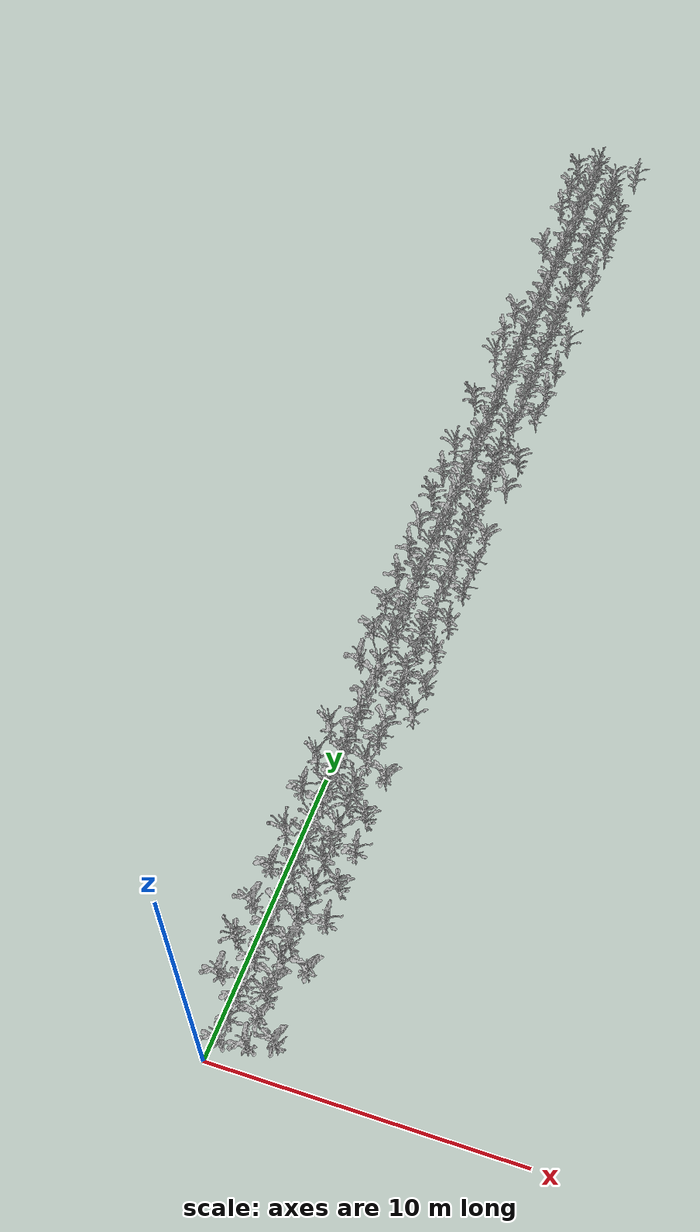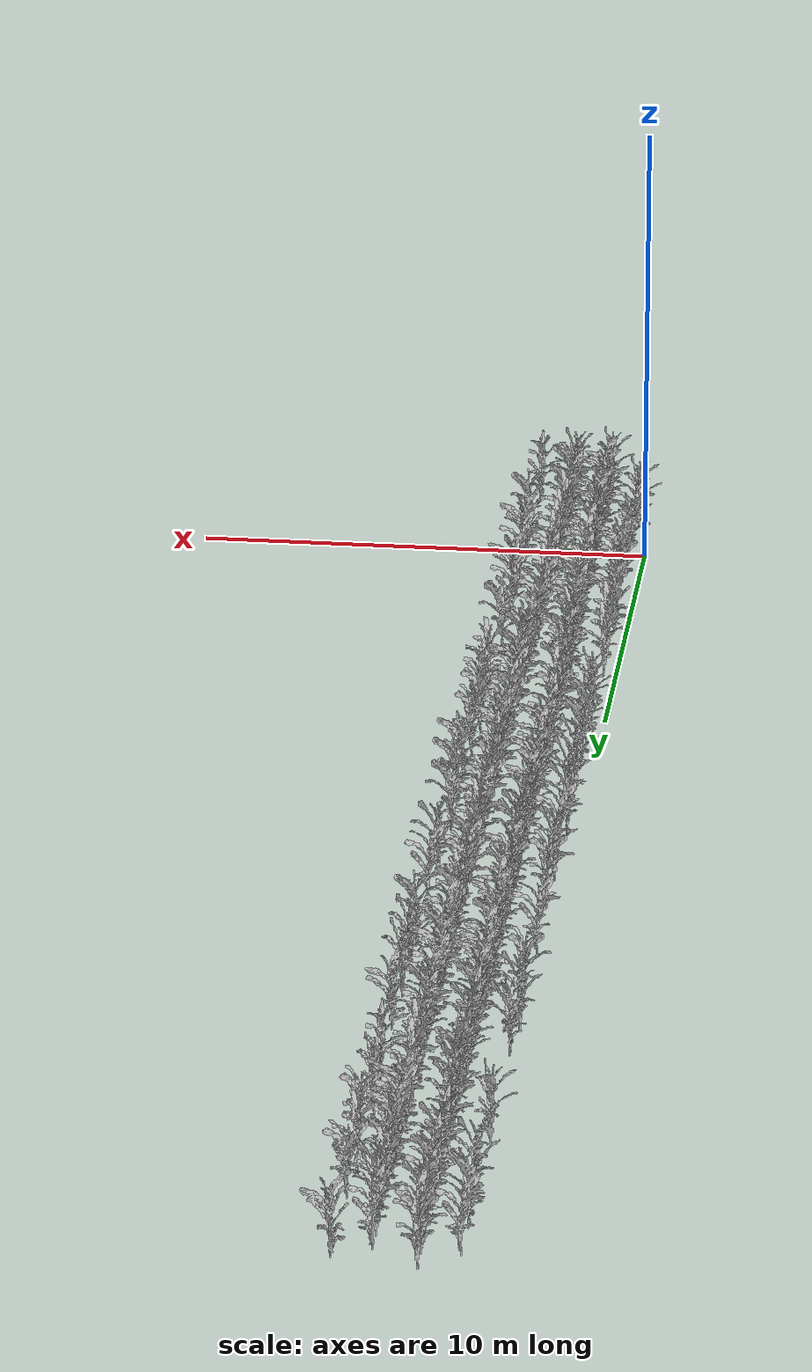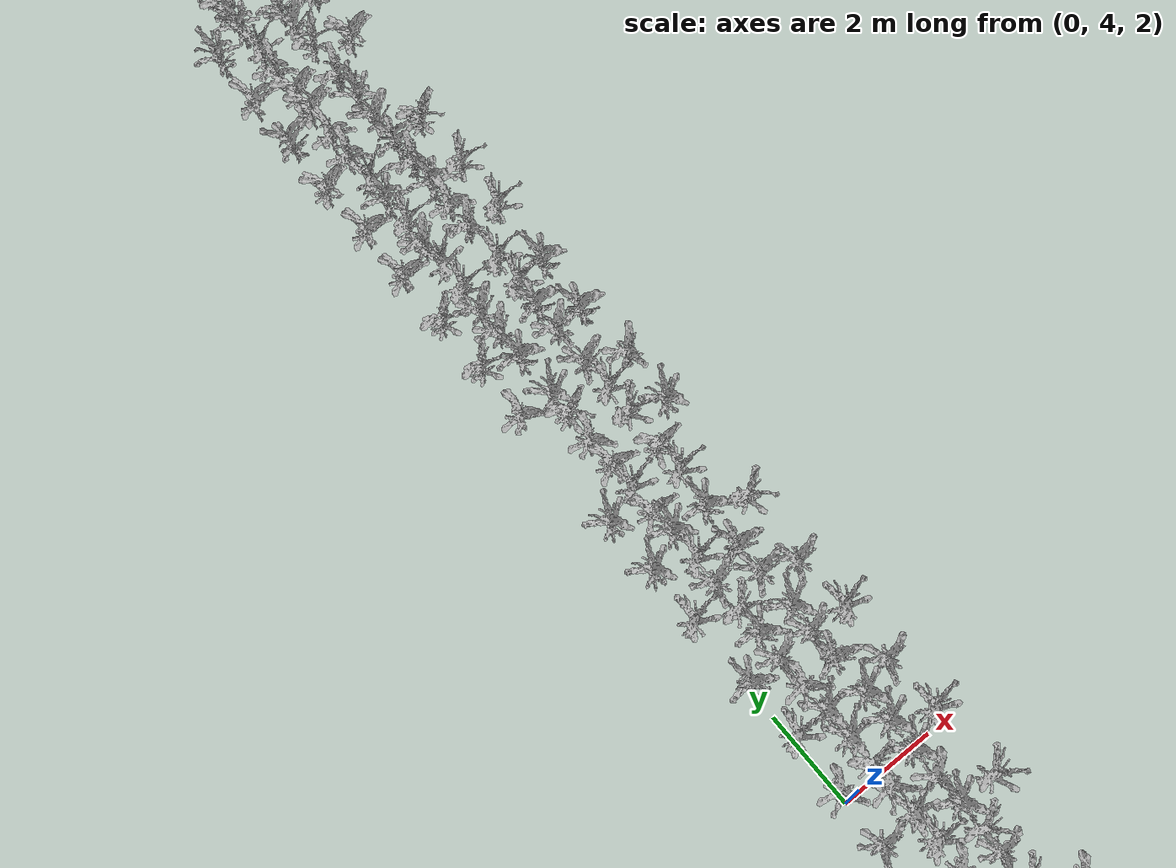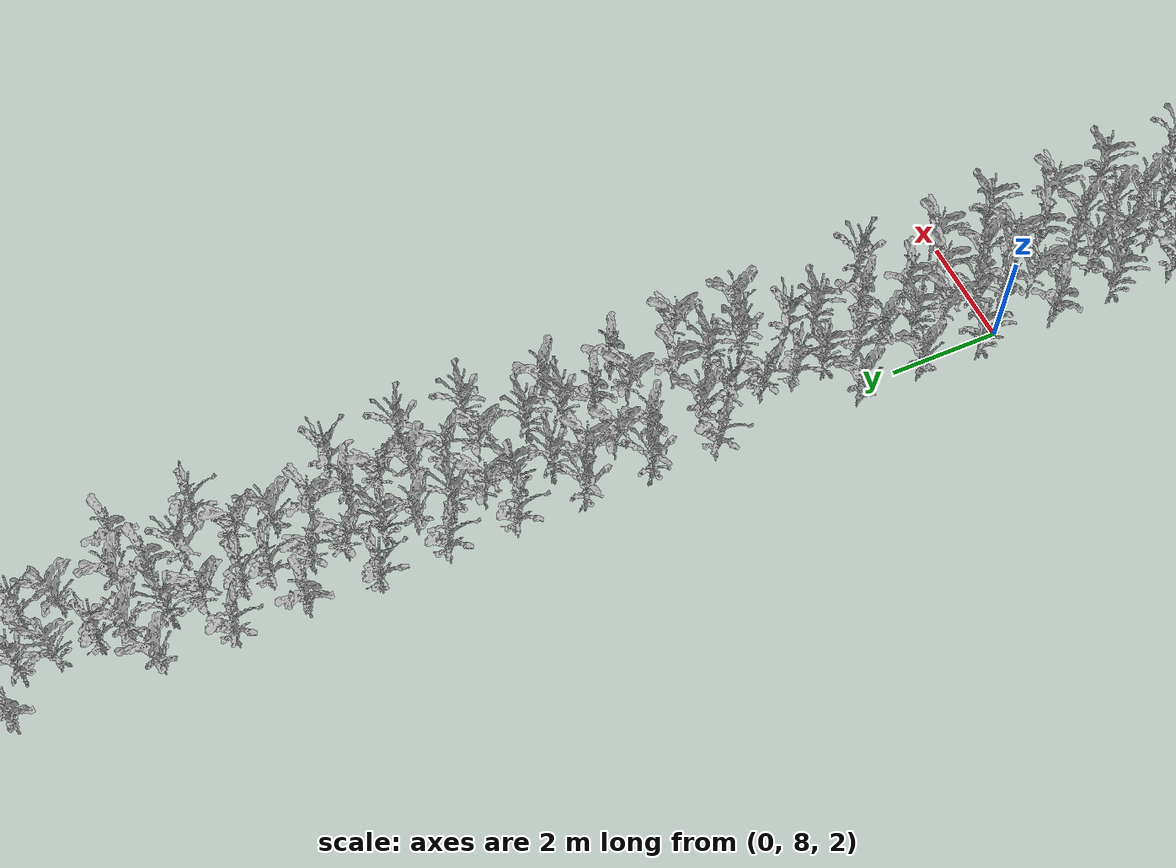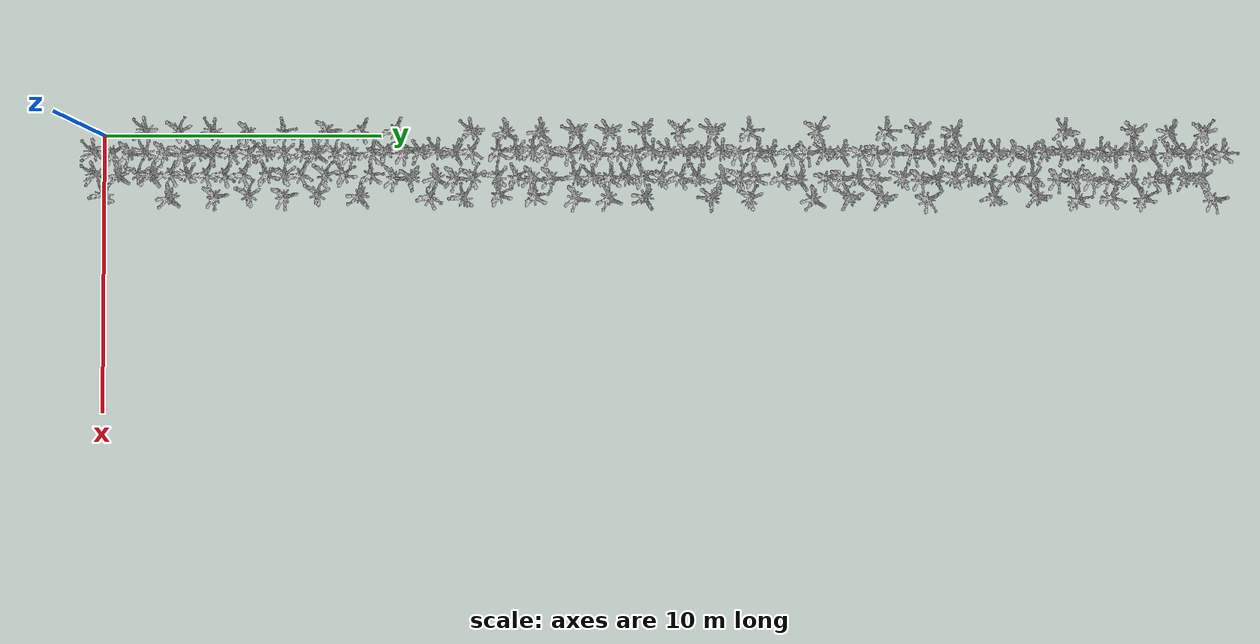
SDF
<sdf version="1.5">
  <model name="model_plot">
    <static>true</static>

    <include>
      <uri>model://sorghum_variant_2</uri>
      <name>plant_0_6</name>
      <pose>-0.0005296306504708638 1.8389059548356452 1.4 0.0 0.0 0.19198621771937624</pose>
    </include>

    <include>
      <uri>model://sorghum_variant_2</uri>
      <name>plant_0_10</name>
      <pose>0.012063896136586514 3.002976926681025 1.4 0.0 0.0 5.1312680008633285</pose>
    </include>

    <include>
      <uri>model://sorghum_variant_2</uri>
      <name>plant_0_14</name>
      <pose>0.036037506579769375 4.221074095008121 1.4 0.0 0.0 6.178465552059927</pose>
    </include>

    <include>
      <uri>model://sorghum_variant_2</uri>
      <name>plant_0_18</name>
      <pose>0.07124165816492738 5.473838173515114 1.4 0.0 0.0 2.443460952792061</pose>
    </include>

    <include>
      <uri>model://sorghum_variant_2</uri>
      <name>plant_0_22</name>
      <pose>0.05182735784360105 6.7083161567306915 1.4 0.0 0.0 4.293509959906051</pose>
    </include>

    <include>
      <uri>model://sorghum_variant_2</uri>
      <name>plant_0_27</name>
      <pose>-0.02310438273061538 8.260260551459398 1.4 0.0 0.0 2.6179938779914944</pose>
    </include>

    <include>
      <uri>model://sorghum_variant_2</uri>
      <name>plant_0_31</name>
      <pose>0.009040332306186349 9.445509588132673 1.4 0.0 0.0 3.6826447217080354</pose>
    </include>

    <include>
      <uri>model://sorghum_variant_2</uri>
      <name>plant_0_35</name>
      <pose>-0.024197432788575897 10.65513399676432 1.4 0.0 0.0 3.717551306747922</pose>
    </include>

    <include>
      <uri>model://sorghum_variant_2</uri>
      <name>plant_0_44</name>
      <pose>-0.006260497785812971 13.401559678803588 1.4 0.0 0.0 0.2617993877991494</pose>
    </include>

    <include>
      <uri>model://sorghum_variant_2</uri>
      <name>plant_0_48</name>
      <pose>-0.00639528925372813 14.62126658039975 1.4 0.0 0.0 1.9373154697137058</pose>
    </include>

    <include>
      <uri>model://sorghum_variant_2</uri>
      <name>plant_0_52</name>
      <pose>-0.014525467854237755 15.844024195298696 1.4 0.0 0.0 1.7976891295541595</pose>
    </include>

    <include>
      <uri>model://sorghum_variant_2</uri>
      <name>plant_0_56</name>
      <pose>-0.012794186420381264 17.082048767878593 1.4 0.0 0.0 0.6806784082777885</pose>
    </include>

    <include>
      <uri>model://sorghum_variant_2</uri>
      <name>plant_0_60</name>
      <pose>-0.002522554714918456 18.292369192931112 1.4 0.0 0.0 0.6457718232379019</pose>
    </include>

    <include>
      <uri>model://sorghum_variant_2</uri>
      <name>plant_0_64</name>
      <pose>-0.0734174621026619 19.511047646149397 1.4 0.0 0.0 1.0995574287564276</pose>
    </include>

    <include>
      <uri>model://sorghum_variant_2</uri>
      <name>plant_0_68</name>
      <pose>-0.0019873724879323185 20.73157728233579 1.4 0.0 0.0 4.956735075663896</pose>
    </include>

    <include>
      <uri>model://sorghum_variant_2</uri>
      <name>plant_0_72</name>
      <pose>-0.048334341853093314 21.964638559737665 1.4 0.0 0.0 0.6632251157578453</pose>
    </include>

    <include>
      <uri>model://sorghum_variant_2</uri>
      <name>plant_0_76</name>
      <pose>-0.007524242231970922 23.196807779297284 1.4 0.0 0.0 4.2062434973063345</pose>
    </include>

    <include>
      <uri>model://sorghum_variant_2</uri>
      <name>plant_0_84</name>
      <pose>-0.0418733607801683 25.60234585579952 1.4 0.0 0.0 5.1312680008633285</pose>
    </include>

    <include>
      <uri>model://sorghum_variant_2</uri>
      <name>plant_0_92</name>
      <pose>-0.034793942409637485 28.05110179935159 1.4 0.0 0.0 4.101523742186674</pose>
    </include>

    <include>
      <uri>model://sorghum_variant_2</uri>
      <name>plant_0_96</name>
      <pose>-0.07748783712971788 29.258094065101183 1.4 0.0 0.0 0.7853981633974483</pose>
    </include>

    <include>
      <uri>model://sorghum_variant_2</uri>
      <name>plant_0_100</name>
      <pose>-0.017202674396466798 30.509530844615576 1.4 0.0 0.0 1.3089969389957472</pose>
    </include>

    <include>
      <uri>model://sorghum_variant_2</uri>
      <name>plant_0_113</name>
      <pose>-0.041044248436605875 34.42555668101766 1.4 0.0 0.0 0.05235987755982989</pose>
    </include>

    <include>
      <uri>model://sorghum_variant_2</uri>
      <name>plant_0_121</name>
      <pose>-0.03271097694754176 36.877938160344236 1.4 0.0 0.0 0.767944870877505</pose>
    </include>

    <include>
      <uri>model://sorghum_variant_2</uri>
      <name>plant_0_125</name>
      <pose>-0.033972244221492226 38.15242442695656 1.4 0.0 0.0 1.4835298641951802</pose>
    </include>

    <include>
      <uri>model://sorghum_variant_2</uri>
      <name>plant_0_129</name>
      <pose>-0.0053895282541960195 39.3192 1.4 0.0 0.0 5.061454830783556</pose>
    </include>

    <include>
      <uri>model://sorghum_variant_2</uri>
      <name>plant_0_197</name>
      <pose>0.78 0.00859493432765372 1.4 0.0 0.0 0.15707963267948966</pose>
    </include>

    <include>
      <uri>model://sorghum_variant_2</uri>
      <name>plant_0_199</name>
      <pose>0.78 0.604318459544044 1.4 0.0 0.0 3.01941960595019</pose>
    </include>

    <include>
      <uri>model://sorghum_variant_2</uri>
      <name>plant_0_201</name>
      <pose>0.78 1.2485720710655503 1.4 0.0 0.0 2.4609142453120048</pose>
    </include>

    <include>
      <uri>model://sorghum_variant_2</uri>
      <name>plant_0_203</name>
      <pose>0.78 1.8132744933393914 1.4 0.0 0.0 6.021385919380437</pose>
    </include>

    <include>
      <uri>model://sorghum_variant_2</uri>
      <name>plant_0_205</name>
      <pose>0.78 2.495308846564527 1.4 0.0 0.0 2.4609142453120048</pose>
    </include>

    <include>
      <uri>model://sorghum_variant_2</uri>
      <name>plant_0_207</name>
      <pose>0.78 3.110507809060019 1.4 0.0 0.0 2.9321531433504737</pose>
    </include>

    <include>
      <uri>model://sorghum_variant_2</uri>
      <name>plant_0_209</name>
      <pose>0.78 3.7275937663911125 1.4 0.0 0.0 0.22689280275926285</pose>
    </include>

    <include>
      <uri>model://sorghum_variant_2</uri>
      <name>plant_0_211</name>
      <pose>0.78 4.2437941434434805 1.4 0.0 0.0 1.1693705988362009</pose>
    </include>

    <include>
      <uri>model://sorghum_variant_2</uri>
      <name>plant_0_213</name>
      <pose>0.78 4.836644146607865 1.4 0.0 0.0 3.2288591161895095</pose>
    </include>

    <include>
      <uri>model://sorghum_variant_2</uri>
      <name>plant_0_215</name>
      <pose>0.78 5.469874423059792 1.4 0.0 0.0 3.3335788713091694</pose>
    </include>

    <include>
      <uri>model://sorghum_variant_2</uri>
      <name>plant_0_217</name>
      <pose>0.78 6.090824765904237 1.4 0.0 0.0 0.20943951023931956</pose>
    </include>

    <include>
      <uri>model://sorghum_variant_2</uri>
      <name>plant_0_219</name>
      <pose>0.78 6.728391545595026 1.4 0.0 0.0 5.480333851262195</pose>
    </include>

    <include>
      <uri>model://sorghum_variant_2</uri>
      <name>plant_0_221</name>
      <pose>0.78 7.32920607511361 1.4 0.0 0.0 4.084070449666731</pose>
    </include>

    <include>
      <uri>model://sorghum_variant_2</uri>
      <name>plant_0_223</name>
      <pose>0.78 7.900958697858983 1.4 0.0 0.0 1.9198621771937625</pose>
    </include>

    <include>
      <uri>model://sorghum_variant_2</uri>
      <name>plant_0_225</name>
      <pose>0.78 8.54025663577937 1.4 0.0 0.0 5.358160803622591</pose>
    </include>

    <include>
      <uri>model://sorghum_variant_2</uri>
      <name>plant_0_227</name>
      <pose>0.78 9.141726983418838 1.4 0.0 0.0 2.548180707911721</pose>
    </include>

    <include>
      <uri>model://sorghum_variant_2</uri>
      <name>plant_0_229</name>
      <pose>0.78 9.81197552772033 1.4 0.0 0.0 3.8920842319473548</pose>
    </include>

    <include>
      <uri>model://sorghum_variant_2</uri>
      <name>plant_0_231</name>
      <pose>0.715 10.352805445266995 1.4 0.0 0.0 0.8726646259971648</pose>
    </include>

    <include>
      <uri>model://sorghum_variant_2</uri>
      <name>plant_0_233</name>
      <pose>0.715 10.964798343013909 1.4 0.0 0.0 2.705260340591211</pose>
    </include>

    <include>
      <uri>model://sorghum_variant_2</uri>
      <name>plant_0_235</name>
      <pose>0.715 11.559390276855224 1.4 0.0 0.0 0.6457718232379019</pose>
    </include>

    <include>
      <uri>model://sorghum_variant_2</uri>
      <name>plant_0_237</name>
      <pose>0.715 12.179410399091381 1.4 0.0 0.0 0.0</pose>
    </include>

    <include>
      <uri>model://sorghum_variant_2</uri>
      <name>plant_0_239</name>
      <pose>0.715 12.848557472244947 1.4 0.0 0.0 1.4486232791552935</pose>
    </include>

    <include>
      <uri>model://sorghum_variant_2</uri>
      <name>plant_0_241</name>
      <pose>0.715 13.335958901374 1.4 0.0 0.0 3.5779249665883754</pose>
    </include>

    <include>
      <uri>model://sorghum_variant_2</uri>
      <name>plant_0_244</name>
      <pose>0.715 14.312959432096134 1.4 0.0 0.0 4.223696789826278</pose>
    </include>

    <include>
      <uri>model://sorghum_variant_2</uri>
      <name>plant_0_246</name>
      <pose>0.715 14.969378642265788 1.4 0.0 0.0 5.707226654021458</pose>
    </include>

    <include>
      <uri>model://sorghum_variant_2</uri>
      <name>plant_0_248</name>
      <pose>0.715 15.531889966406707 1.4 0.0 0.0 5.497787143782138</pose>
    </include>

    <include>
      <uri>model://sorghum_variant_2</uri>
      <name>plant_0_250</name>
      <pose>0.715 16.12576222307757 1.4 0.0 0.0 2.3736477827122884</pose>
    </include>

    <include>
      <uri>model://sorghum_variant_2</uri>
      <name>plant_0_252</name>
      <pose>0.715 16.80070637781182 1.4 0.0 0.0 3.12413936106985</pose>
    </include>

    <include>
      <uri>model://sorghum_variant_2</uri>
      <name>plant_0_254</name>
      <pose>0.715 17.356890484137416 1.4 0.0 0.0 5.82939970166106</pose>
    </include>

    <include>
      <uri>model://sorghum_variant_2</uri>
      <name>plant_0_256</name>
      <pose>0.715 17.911239119095676 1.4 0.0 0.0 2.3387411976724017</pose>
    </include>

    <include>
      <uri>model://sorghum_variant_2</uri>
      <name>plant_0_258</name>
      <pose>0.715 18.56866911002355 1.4 0.0 0.0 4.118977034706618</pose>
    </include>

    <include>
      <uri>model://sorghum_variant_2</uri>
      <name>plant_0_260</name>
      <pose>0.715 19.141904991811764 1.4 0.0 0.0 2.9845130209103035</pose>
    </include>

    <include>
      <uri>model://sorghum_variant_2</uri>
      <name>plant_0_262</name>
      <pose>0.715 19.811266004382336 1.4 0.0 0.0 0.03490658503988659</pose>
    </include>

    <include>
      <uri>model://sorghum_variant_2</uri>
      <name>plant_0_264</name>
      <pose>0.715 20.405520809036915 1.4 0.0 0.0 0.29670597283903605</pose>
    </include>

    <include>
      <uri>model://sorghum_variant_2</uri>
      <name>plant_0_266</name>
      <pose>0.715 21.116299040407956 1.4 0.0 0.0 1.0122909661567112</pose>
    </include>

    <include>
      <uri>model://sorghum_variant_2</uri>
      <name>plant_0_268</name>
      <pose>0.715 21.57484143683173 1.4 0.0 0.0 1.1519173063162575</pose>
    </include>

    <include>
      <uri>model://sorghum_variant_2</uri>
      <name>plant_0_270</name>
      <pose>0.715 22.25597324315723 1.4 0.0 0.0 6.2482787221397</pose>
    </include>

    <include>
      <uri>model://sorghum_variant_2</uri>
      <name>plant_0_272</name>
      <pose>0.715 22.81104156581477 1.4 0.0 0.0 2.8448866807507573</pose>
    </include>

    <include>
      <uri>model://sorghum_variant_2</uri>
      <name>plant_0_274</name>
      <pose>0.715 23.49507432733307 1.4 0.0 0.0 4.084070449666731</pose>
    </include>

    <include>
      <uri>model://sorghum_variant_2</uri>
      <name>plant_0_276</name>
      <pose>0.715 23.982717028432347 1.4 0.0 0.0 1.3962634015954636</pose>
    </include>

    <include>
      <uri>model://sorghum_variant_2</uri>
      <name>plant_0_278</name>
      <pose>0.715 24.689960260017916 1.4 0.0 0.0 3.4033920413889427</pose>
    </include>

    <include>
      <uri>model://sorghum_variant_2</uri>
      <name>plant_0_280</name>
      <pose>0.715 25.265015847987254 1.4 0.0 0.0 2.722713633111154</pose>
    </include>

    <include>
      <uri>model://sorghum_variant_2</uri>
      <name>plant_0_282</name>
      <pose>0.715 25.95564034303193 1.4 0.0 0.0 0.4014257279586958</pose>
    </include>

    <include>
      <uri>model://sorghum_variant_2</uri>
      <name>plant_0_284</name>
      <pose>0.715 26.510050704998978 1.4 0.0 0.0 1.4835298641951802</pose>
    </include>

    <include>
      <uri>model://sorghum_variant_2</uri>
      <name>plant_0_286</name>
      <pose>0.715 27.17104577483048 1.4 0.0 0.0 3.0892327760299634</pose>
    </include>

    <include>
      <uri>model://sorghum_variant_2</uri>
      <name>plant_0_288</name>
      <pose>0.715 27.707378185004483 1.4 0.0 0.0 2.8623399732707004</pose>
    </include>

    <include>
      <uri>model://sorghum_variant_2</uri>
      <name>plant_0_290</name>
      <pose>0.715 28.282135003039308 1.4 0.0 0.0 2.5656340004316642</pose>
    </include>

    <include>
      <uri>model://sorghum_variant_2</uri>
      <name>plant_0_292</name>
      <pose>0.715 29.01417815028271 1.4 0.0 0.0 2.827433388230814</pose>
    </include>

    <include>
      <uri>model://sorghum_variant_2</uri>
      <name>plant_0_294</name>
      <pose>0.715 29.570596049572952 1.4 0.0 0.0 1.5184364492350666</pose>
    </include>

    <include>
      <uri>model://sorghum_variant_2</uri>
      <name>plant_0_296</name>
      <pose>0.715 30.177373925418866 1.4 0.0 0.0 5.707226654021458</pose>
    </include>

    <include>
      <uri>model://sorghum_variant_2</uri>
      <name>plant_0_298</name>
      <pose>0.715 30.748276268427777 1.4 0.0 0.0 0.9948376736367679</pose>
    </include>

    <include>
      <uri>model://sorghum_variant_2</uri>
      <name>plant_0_300</name>
      <pose>0.715 31.419399358693582 1.4 0.0 0.0 6.19591884457987</pose>
    </include>

    <include>
      <uri>model://sorghum_variant_2</uri>
      <name>plant_0_302</name>
      <pose>0.715 32.06789718037348 1.4 0.0 0.0 0.10471975511965978</pose>
    </include>

    <include>
      <uri>model://sorghum_variant_2</uri>
      <name>plant_0_304</name>
      <pose>0.715 32.636515553250796 1.4 0.0 0.0 2.059488517353309</pose>
    </include>

    <include>
      <uri>model://sorghum_variant_2</uri>
      <name>plant_0_306</name>
      <pose>0.715 33.20595443605181 1.4 0.0 0.0 1.1868238913561442</pose>
    </include>

    <include>
      <uri>model://sorghum_variant_2</uri>
      <name>plant_0_308</name>
      <pose>0.715 33.75218708362628 1.4 0.0 0.0 0.4188790204786391</pose>
    </include>

    <include>
      <uri>model://sorghum_variant_2</uri>
      <name>plant_0_310</name>
      <pose>0.715 34.421687217208024 1.4 0.0 0.0 0.6457718232379019</pose>
    </include>

    <include>
      <uri>model://sorghum_variant_2</uri>
      <name>plant_0_312</name>
      <pose>0.715 34.99556642452193 1.4 0.0 0.0 6.19591884457987</pose>
    </include>

    <include>
      <uri>model://sorghum_variant_2</uri>
      <name>plant_0_314</name>
      <pose>0.715 35.66675663785984 1.4 0.0 0.0 5.707226654021458</pose>
    </include>

    <include>
      <uri>model://sorghum_variant_2</uri>
      <name>plant_0_316</name>
      <pose>0.715 36.24996460405333 1.4 0.0 0.0 0.9773843811168246</pose>
    </include>

    <include>
      <uri>model://sorghum_variant_2</uri>
      <name>plant_0_318</name>
      <pose>0.715 36.884789338309574 1.4 0.0 0.0 5.82939970166106</pose>
    </include>

    <include>
      <uri>model://sorghum_variant_2</uri>
      <name>plant_0_320</name>
      <pose>0.715 37.472783520911314 1.4 0.0 0.0 1.5533430342749532</pose>
    </include>

    <include>
      <uri>model://sorghum_variant_2</uri>
      <name>plant_0_322</name>
      <pose>0.715 38.10041997228612 1.4 0.0 0.0 4.71238898038469</pose>
    </include>

    <include>
      <uri>model://sorghum_variant_2</uri>
      <name>plant_0_324</name>
      <pose>0.715 38.76175421944016 1.4 0.0 0.0 1.1693705988362009</pose>
    </include>

    <include>
      <uri>model://sorghum_variant_2</uri>
      <name>plant_0_326</name>
      <pose>0.715 39.321632227679885 1.4 0.0 0.0 3.246312408709453</pose>
    </include>

    <include>
      <uri>model://sorghum_variant_2</uri>
      <name>plant_0_328</name>
      <pose>0.715 39.960846879504054 1.4 0.0 0.0 4.084070449666731</pose>
    </include>

    <include>
      <uri>model://sorghum_variant_2</uri>
      <name>plant_2_0</name>
      <pose>1.56 0.0722431121896649 1.4 0.0 0.0 0.4188790204786391</pose>
    </include>

    <include>
      <uri>model://sorghum_variant_2</uri>
      <name>plant_2_3</name>
      <pose>1.56 0.9149569423502892 1.4 0.0 0.0 1.9024088846738192</pose>
    </include>

    <include>
      <uri>model://sorghum_variant_2</uri>
      <name>plant_2_5</name>
      <pose>1.56 1.59093775228701 1.4 0.0 0.0 5.288347633542818</pose>
    </include>

    <include>
      <uri>model://sorghum_variant_2</uri>
      <name>plant_2_7</name>
      <pose>1.56 2.120803323638079 1.4 0.0 0.0 1.5882496193148399</pose>
    </include>

    <include>
      <uri>model://sorghum_variant_2</uri>
      <name>plant_2_9</name>
      <pose>1.56 2.7055312585385534 1.4 0.0 0.0 3.735004599267865</pose>
    </include>

    <include>
      <uri>model://sorghum_variant_2</uri>
      <name>plant_2_11</name>
      <pose>1.56 3.330820923755391 1.4 0.0 0.0 5.777039824101231</pose>
    </include>

    <include>
      <uri>model://sorghum_variant_2</uri>
      <name>plant_2_13</name>
      <pose>1.56 3.9422446996040326 1.4 0.0 0.0 3.6302848441482056</pose>
    </include>

    <include>
      <uri>model://sorghum_variant_2</uri>
      <name>plant_2_15</name>
      <pose>1.56 4.5972191976072105 1.4 0.0 0.0 3.595378259108319</pose>
    </include>

    <include>
      <uri>model://sorghum_variant_2</uri>
      <name>plant_2_17</name>
      <pose>1.56 5.258313602567546 1.4 0.0 0.0 3.6651914291880923</pose>
    </include>

    <include>
      <uri>model://sorghum_variant_2</uri>
      <name>plant_2_20</name>
      <pose>1.56 6.103925923630441 1.4 0.0 0.0 4.485496177625427</pose>
    </include>

    <include>
      <uri>model://sorghum_variant_2</uri>
      <name>plant_2_22</name>
      <pose>1.56 6.7449766295643485 1.4 0.0 0.0 5.375614096142535</pose>
    </include>

    <include>
      <uri>model://sorghum_variant_2</uri>
      <name>plant_2_24</name>
      <pose>1.56 7.3217006443866435 1.4 0.0 0.0 3.7000980142279785</pose>
    </include>

    <include>
      <uri>model://sorghum_variant_2</uri>
      <name>plant_2_27</name>
      <pose>1.56 8.18209896556657 1.4 0.0 0.0 5.044001538263612</pose>
    </include>

    <include>
      <uri>model://sorghum_variant_2</uri>
      <name>plant_2_29</name>
      <pose>1.56 8.840459444922976 1.4 0.0 0.0 4.642575810304916</pose>
    </include>

    <include>
      <uri>model://sorghum_variant_2</uri>
      <name>plant_2_32</name>
      <pose>1.56 9.791610990182422 1.4 0.0 0.0 4.153883619746504</pose>
    </include>

    <include>
      <uri>model://sorghum_variant_2</uri>
      <name>plant_2_35</name>
      <pose>1.625 10.65619092240277 1.4 0.0 0.0 2.4609142453120048</pose>
    </include>

    <include>
      <uri>model://sorghum_variant_2</uri>
      <name>plant_2_37</name>
      <pose>1.625 11.267942421546527 1.4 0.0 0.0 1.117010721276371</pose>
    </include>

    <include>
      <uri>model://sorghum_variant_2</uri>
      <name>plant_2_40</name>
      <pose>1.625 12.149254848354301 1.4 0.0 0.0 1.9896753472735358</pose>
    </include>

    <include>
      <uri>model://sorghum_variant_2</uri>
      <name>plant_2_42</name>
      <pose>1.625 12.776467284209291 1.4 0.0 0.0 2.478367537831948</pose>
    </include>

    <include>
      <uri>model://sorghum_variant_2</uri>
      <name>plant_2_44</name>
      <pose>1.625 13.438865223423544 1.4 0.0 0.0 5.218534463463046</pose>
    </include>

    <include>
      <uri>model://sorghum_variant_2</uri>
      <name>plant_2_47</name>
      <pose>1.625 14.311562907365612 1.4 0.0 0.0 5.6374134839416845</pose>
    </include>

    <include>
      <uri>model://sorghum_variant_2</uri>
      <name>plant_2_49</name>
      <pose>1.625 14.95679365136133 1.4 0.0 0.0 4.537856055185257</pose>
    </include>

    <include>
      <uri>model://sorghum_variant_2</uri>
      <name>plant_2_51</name>
      <pose>1.625 15.552135381397202 1.4 0.0 0.0 2.3911010752322315</pose>
    </include>

    <include>
      <uri>model://sorghum_variant_2</uri>
      <name>plant_2_53</name>
      <pose>1.625 16.21185230944986 1.4 0.0 0.0 2.530727415391778</pose>
    </include>

    <include>
      <uri>model://sorghum_variant_2</uri>
      <name>plant_2_56</name>
      <pose>1.625 17.102550354114655 1.4 0.0 0.0 5.934119456780721</pose>
    </include>

    <include>
      <uri>model://sorghum_variant_2</uri>
      <name>plant_2_58</name>
      <pose>1.625 17.718838725051555 1.4 0.0 0.0 0.17453292519943295</pose>
    </include>

    <include>
      <uri>model://sorghum_variant_2</uri>
      <name>plant_2_60</name>
      <pose>1.625 18.28834164345712 1.4 0.0 0.0 4.084070449666731</pose>
    </include>

    <include>
      <uri>model://sorghum_variant_2</uri>
      <name>plant_2_62</name>
      <pose>1.625 18.89521605673562 1.4 0.0 0.0 6.126105674500097</pose>
    </include>

    <include>
      <uri>model://sorghum_variant_2</uri>
      <name>plant_2_64</name>
      <pose>1.625 19.45385195820251 1.4 0.0 0.0 4.520402762665314</pose>
    </include>

    <include>
      <uri>model://sorghum_variant_2</uri>
      <name>plant_2_66</name>
      <pose>1.625 20.102740928495336 1.4 0.0 0.0 5.358160803622591</pose>
    </include>

    <include>
      <uri>model://sorghum_variant_2</uri>
      <name>plant_2_68</name>
      <pose>1.625 20.7389235712109 1.4 0.0 0.0 3.7699111843077517</pose>
    </include>

    <include>
      <uri>model://sorghum_variant_2</uri>
      <name>plant_2_70</name>
      <pose>1.625 21.404835768364755 1.4 0.0 0.0 6.161012259539984</pose>
    </include>

    <include>
      <uri>model://sorghum_variant_2</uri>
      <name>plant_2_73</name>
      <pose>1.625 22.28756521786409 1.4 0.0 0.0 1.9722220547535925</pose>
    </include>

    <include>
      <uri>model://sorghum_variant_2</uri>
      <name>plant_2_75</name>
      <pose>1.625 22.874203034503722 1.4 0.0 0.0 5.201081170943102</pose>
    </include>

    <include>
      <uri>model://sorghum_variant_2</uri>
      <name>plant_2_77</name>
      <pose>1.625 23.409803879599792 1.4 0.0 0.0 4.310963252425994</pose>
    </include>

    <include>
      <uri>model://sorghum_variant_2</uri>
      <name>plant_2_80</name>
      <pose>1.625 24.381074496686136 1.4 0.0 0.0 3.8048177693476384</pose>
    </include>

    <include>
      <uri>model://sorghum_variant_2</uri>
      <name>plant_2_82</name>
      <pose>1.625 25.021455440983225 1.4 0.0 0.0 1.5533430342749532</pose>
    </include>

    <include>
      <uri>model://sorghum_variant_2</uri>
      <name>plant_2_85</name>
      <pose>1.625 25.95750830378677 1.4 0.0 0.0 3.1066860685499065</pose>
    </include>

    <include>
      <uri>model://sorghum_variant_2</uri>
      <name>plant_2_87</name>
      <pose>1.625 26.496179812789883 1.4 0.0 0.0 2.775073510670984</pose>
    </include>

    <include>
      <uri>model://sorghum_variant_2</uri>
      <name>plant_2_89</name>
      <pose>1.625 27.09849817943908 1.4 0.0 0.0 1.7278759594743862</pose>
    </include>

    <include>
      <uri>model://sorghum_variant_2</uri>
      <name>plant_2_91</name>
      <pose>1.625 27.711805140816114 1.4 0.0 0.0 2.5830872929516078</pose>
    </include>

    <include>
      <uri>model://sorghum_variant_2</uri>
      <name>plant_2_94</name>
      <pose>1.625 28.647495912578098 1.4 0.0 0.0 5.305800926062762</pose>
    </include>

    <include>
      <uri>model://sorghum_variant_2</uri>
      <name>plant_2_96</name>
      <pose>1.625 29.289541779285088 1.4 0.0 0.0 2.705260340591211</pose>
    </include>

    <include>
      <uri>model://sorghum_variant_2</uri>
      <name>plant_2_98</name>
      <pose>1.625 29.889595323775666 1.4 0.0 0.0 1.3788101090755203</pose>
    </include>

    <include>
      <uri>model://sorghum_variant_2</uri>
      <name>plant_2_100</name>
      <pose>1.625 30.474699769313986 1.4 0.0 0.0 5.410520681182422</pose>
    </include>

    <include>
      <uri>model://sorghum_variant_2</uri>
      <name>plant_2_102</name>
      <pose>1.625 31.101107391917523 1.4 0.0 0.0 6.1086523819801535</pose>
    </include>

    <include>
      <uri>model://sorghum_variant_2</uri>
      <name>plant_2_104</name>
      <pose>1.625 31.71420203965975 1.4 0.0 0.0 3.7524578917878086</pose>
    </include>

    <include>
      <uri>model://sorghum_variant_2</uri>
      <name>plant_2_107</name>
      <pose>1.625 32.62932280314702 1.4 0.0 0.0 3.5604716740684323</pose>
    </include>

    <include>
      <uri>model://sorghum_variant_2</uri>
      <name>plant_2_109</name>
      <pose>1.625 33.27397994001854 1.4 0.0 0.0 5.794493116621174</pose>
    </include>

    <include>
      <uri>model://sorghum_variant_2</uri>
      <name>plant_2_112</name>
      <pose>1.625 34.15618048027995 1.4 0.0 0.0 2.5656340004316642</pose>
    </include>

    <include>
      <uri>model://sorghum_variant_2</uri>
      <name>plant_2_114</name>
      <pose>1.625 34.73717638464077 1.4 0.0 0.0 5.1312680008633285</pose>
    </include>

    <include>
      <uri>model://sorghum_variant_2</uri>
      <name>plant_2_116</name>
      <pose>1.625 35.37085894975716 1.4 0.0 0.0 2.600540585471551</pose>
    </include>

    <include>
      <uri>model://sorghum_variant_2</uri>
      <name>plant_2_118</name>
      <pose>1.625 35.94105098582321 1.4 0.0 0.0 2.234021442552742</pose>
    </include>

    <include>
      <uri>model://sorghum_variant_2</uri>
      <name>plant_2_121</name>
      <pose>1.625 36.79682683170542 1.4 0.0 0.0 1.7278759594743862</pose>
    </include>

    <include>
      <uri>model://sorghum_variant_2</uri>
      <name>plant_2_123</name>
      <pose>1.625 37.54135756138237 1.4 0.0 0.0 3.717551306747922</pose>
    </include>

    <include>
      <uri>model://sorghum_variant_2</uri>
      <name>plant_2_125</name>
      <pose>1.625 38.06030419610935 1.4 0.0 0.0 1.117010721276371</pose>
    </include>

    <include>
      <uri>model://sorghum_variant_2</uri>
      <name>plant_2_127</name>
      <pose>1.625 38.698756561289144 1.4 0.0 0.0 0.4188790204786391</pose>
    </include>

    <include>
      <uri>model://sorghum_variant_2</uri>
      <name>plant_2_129</name>
      <pose>1.625 39.2318122178856 1.4 0.0 0.0 5.445427266222308</pose>
    </include>

    <include>
      <uri>model://sorghum_variant_2</uri>
      <name>plant_2_198</name>
      <pose>2.326378241552539 0.3762162292500837 1.4 0.0 0.0 5.951572749300664</pose>
    </include>

    <include>
      <uri>model://sorghum_variant_2</uri>
      <name>plant_2_206</name>
      <pose>2.3497299214097107 2.715027283025053 1.4 0.0 0.0 1.8675022996339325</pose>
    </include>

    <include>
      <uri>model://sorghum_variant_2</uri>
      <name>plant_2_211</name>
      <pose>2.3128423470232695 4.2839340116294835 1.4 0.0 0.0 2.6878070480712677</pose>
    </include>

    <include>
      <uri>model://sorghum_variant_2</uri>
      <name>plant_2_215</name>
      <pose>2.2966268979696207 5.472935803502639 1.4 0.0 0.0 5.253441048502932</pose>
    </include>

    <include>
      <uri>model://sorghum_variant_2</uri>
      <name>plant_2_219</name>
      <pose>2.3136522683478877 6.726628271112824 1.4 0.0 0.0 2.775073510670984</pose>
    </include>

    <include>
      <uri>model://sorghum_variant_2</uri>
      <name>plant_2_223</name>
      <pose>2.239507172027181 7.912420100109682 1.4 0.0 0.0 5.1661745859032155</pose>
    </include>

    <include>
      <uri>model://sorghum_variant_2</uri>
      <name>plant_2_228</name>
      <pose>2.2945452464250047 9.458245793473328 1.4 0.0 0.0 1.6580627893946132</pose>
    </include>

    <include>
      <uri>model://sorghum_variant_2</uri>
      <name>plant_2_236</name>
      <pose>2.3374487848065995 11.890833015095392 1.4 0.0 0.0 3.6651914291880923</pose>
    </include>

    <include>
      <uri>model://sorghum_variant_2</uri>
      <name>plant_2_240</name>
      <pose>2.3887507568792197 13.103321003300763 1.4 0.0 0.0 5.794493116621174</pose>
    </include>

    <include>
      <uri>model://sorghum_variant_2</uri>
      <name>plant_2_244</name>
      <pose>2.24820405493585 14.35864770697289 1.4 0.0 0.0 4.50294947014537</pose>
    </include>

    <include>
      <uri>model://sorghum_variant_2</uri>
      <name>plant_2_248</name>
      <pose>2.296028893598102 15.61445108995851 1.4 0.0 0.0 4.241150082346221</pose>
    </include>

    <include>
      <uri>model://sorghum_variant_2</uri>
      <name>plant_2_253</name>
      <pose>2.3201994375986814 17.08511087492001 1.4 0.0 0.0 2.356194490192345</pose>
    </include>

    <include>
      <uri>model://sorghum_variant_2</uri>
      <name>plant_2_257</name>
      <pose>2.3213292219303088 18.267572926970985 1.4 0.0 0.0 2.1467549799530254</pose>
    </include>

    <include>
      <uri>model://sorghum_variant_2</uri>
      <name>plant_2_261</name>
      <pose>2.304434699092032 19.570476340180946 1.4 0.0 0.0 1.5184364492350666</pose>
    </include>

    <include>
      <uri>model://sorghum_variant_2</uri>
      <name>plant_2_269</name>
      <pose>2.317960729944728 21.927061149851987 1.4 0.0 0.0 1.0122909661567112</pose>
    </include>

    <include>
      <uri>model://sorghum_variant_2</uri>
      <name>plant_2_273</name>
      <pose>2.3639195898354504 23.248753930874994 1.4 0.0 0.0 5.1661745859032155</pose>
    </include>

    <include>
      <uri>model://sorghum_variant_2</uri>
      <name>plant_2_281</name>
      <pose>2.340839290097494 25.514921066412697 1.4 0.0 0.0 1.9547687622336491</pose>
    </include>

    <include>
      <uri>model://sorghum_variant_2</uri>
      <name>plant_2_285</name>
      <pose>2.329363471225298 26.820024442272334 1.4 0.0 0.0 0.47123889803846897</pose>
    </include>

    <include>
      <uri>model://sorghum_variant_2</uri>
      <name>plant_2_289</name>
      <pose>2.3490712336265767 27.998765307950993 1.4 0.0 0.0 0.4014257279586958</pose>
    </include>

    <include>
      <uri>model://sorghum_variant_2</uri>
      <name>plant_2_294</name>
      <pose>2.3719003761228654 29.54237424225582 1.4 0.0 0.0 3.0892327760299634</pose>
    </include>

    <include>
      <uri>model://sorghum_variant_2</uri>
      <name>plant_2_302</name>
      <pose>2.3183784139006796 31.921308118142818 1.4 0.0 0.0 5.969026041820607</pose>
    </include>

    <include>
      <uri>model://sorghum_variant_2</uri>
      <name>plant_2_307</name>
      <pose>2.2754835797023283 33.45822216402287 1.4 0.0 0.0 0.19198621771937624</pose>
    </include>

    <include>
      <uri>model://sorghum_variant_2</uri>
      <name>plant_2_311</name>
      <pose>2.3782022590548126 34.830688761722534 1.4 0.0 0.0 4.293509959906051</pose>
    </include>

    <include>
      <uri>model://sorghum_variant_2</uri>
      <name>plant_2_315</name>
      <pose>2.280554744533999 36.01760206090816 1.4 0.0 0.0 3.7699111843077517</pose>
    </include>

    <include>
      <uri>model://sorghum_variant_2</uri>
      <name>plant_2_319</name>
      <pose>2.347102942359239 37.16965124823267 1.4 0.0 0.0 4.60766922526503</pose>
    </include>

    <include>
      <uri>model://sorghum_variant_2</uri>
      <name>plant_2_327</name>
      <pose>2.3380739013936442 39.65413221021638 1.4 0.0 0.0 2.722713633111154</pose>
    </include>
    </model>
</sdf>

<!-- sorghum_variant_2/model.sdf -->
<sdf version="1.5">
     <model name="sorghum_variant_2">
          <static>true</static>
          <link name="link">
               <inertial>
                    <pose>0 0 0 0 0 0</pose>
                    <mass>4</mass>
                    <inertia>
                         <ixx>0.01</ixx>
                         <ixy>0</ixy>
                         <ixz>0</ixz>
                         <iyy>0.01</iyy>
                         <iyz>0</iyz>
                         <izz>0.01</izz>
                    </inertia>
               </inertial>

               <collision name='collision'>
                    <pose>0 0 0.625 0 0 0</pose>
                    <geometry>
                         <cylinder>
                              <radius>0.0075</radius>
                              <length>1.25</length>
                         </cylinder>
                    </geometry>
                    <max_contacts>10</max_contacts>
               </collision>

               <visual name="stem">
                    <geometry>
                         <mesh>
                              <uri>model://sorghum_variant_2/meshes/sorghum_variant_2.dae</uri>
                              <submesh>
                                   <name>Stem</name>
                              </submesh>
                         </mesh>
                    </geometry>
                    <material>
                         <script>
                              <uri>model://sorghum_variant_2/materials/scripts/</uri>
                              <uri>model://sorghum_variant_2/materials/textures/</uri>
                              <name>Sorghum/Stem</name>
                         </script>
                    </material>
               </visual>

               <visual name="leaves">
                    <geometry>
                         <mesh>
                              <uri>model://sorghum_variant_2/meshes/sorghum_variant_2.dae</uri>
                              <submesh>
                                   <name>Leaves</name>
                              </submesh>
                         </mesh>
                    </geometry>
                    <material>
                         <script>
                              <uri>model://sorghum_variant_2/materials/scripts/</uri>
                              <uri>model://sorghum_variant_2/materials/textures/</uri>
                              <name>Sorghum/Leaves</name>
                         </script>
                    </material>
               </visual>

               <visual name="tip">
                    <geometry>
                         <mesh>
                              <uri>model://sorghum_variant_2/meshes/sorghum_variant_2.dae</uri>
                              <submesh>
                                   <name>Tip</name>
                              </submesh>
                         </mesh>
                    </geometry>
                    <material>
                         <script>
                              <uri>model://sorghum_variant_2/materials/scripts/</uri>
                              <uri>model://sorghum_variant_2/materials/textures/</uri>
                              <name>Sorghum/Tip</name>
                         </script>
                    </material>
               </visual>

          </link>
     </model>
</sdf>
